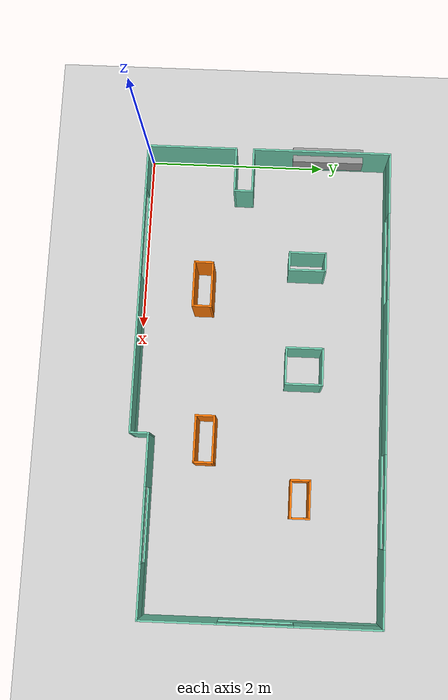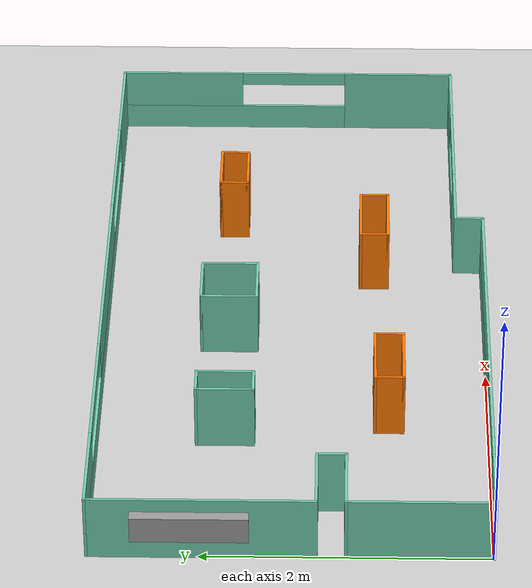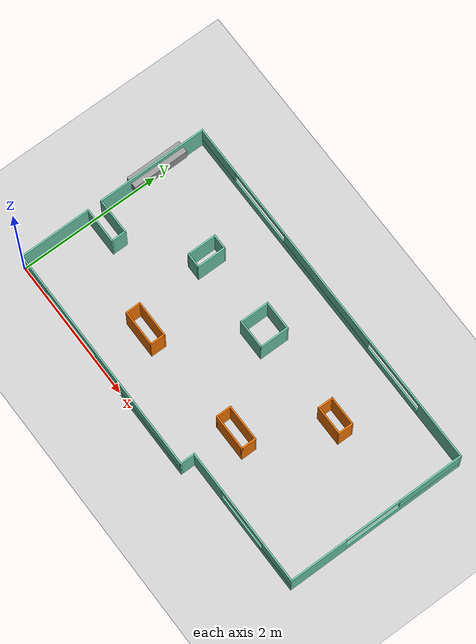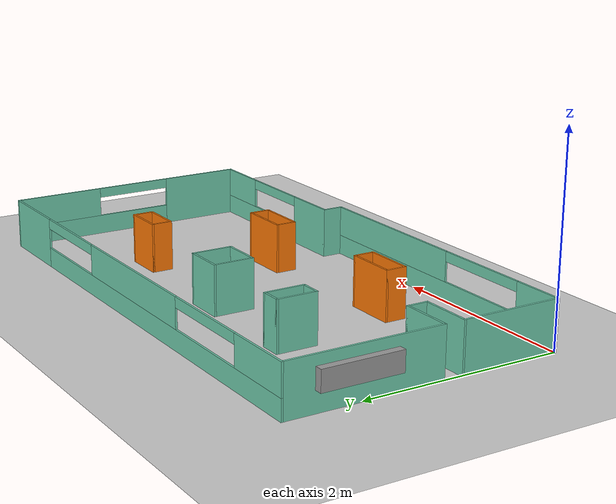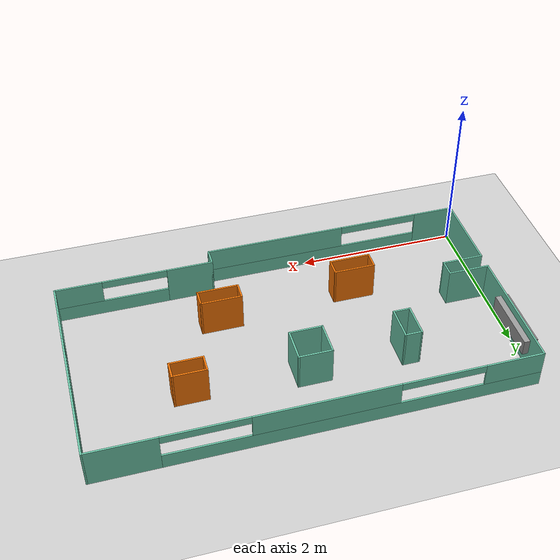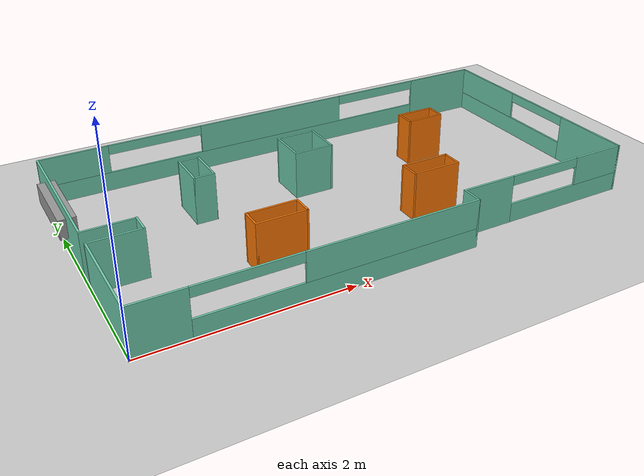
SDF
<sdf version="1.7">
 <world name="default">
  <light name="sun" type="directional">
   <pose>0 0 10 0 -0 0</pose>
   <diffuse>0.8 0.8 0.8 1</diffuse>
   <specular>0.2 0.2 0.2 1</specular>
   <attenuation>
    <range>1000</range>
    <constant>0.9</constant>
    <linear>0.01</linear>
    <quadratic>0.001</quadratic>
   </attenuation>
   <direction>-0.5 0.1 -0.9</direction>
   <spot><inner_angle>0</inner_angle><outer_angle>0</outer_angle><falloff>0</falloff></spot>
  </light>
  <model name="ground_plane">
   <static>1</static>
   <link name="link">
    <collision name="collision">
     <geometry><plane><normal>0 0 1</normal><size>100 100</size></plane></geometry>
     <surface>
      <contact><collide_bitmask>65535</collide_bitmask></contact>
      <friction><ode><mu>100</mu><mu2>50</mu2></ode></friction>
     </surface>
    </collision>
    <visual name="visual">
     <cast_shadows>0</cast_shadows>
     <geometry><plane><normal>0 0 1</normal><size>100 100</size></plane></geometry>
     <material>
      <script><uri>file://media/materials/scripts/gazebo.material</uri><name>Gazebo/Grey</name></script>
     </material>
    </visual>
   </link>
  </model>
  <gravity>0 0 -9.8</gravity>
  <magnetic_field>6e-06 2.3e-05 -4.2e-05</magnetic_field>
  <atmosphere type="adiabatic"/>
  <physics type="ode">
   <max_step_size>0.001</max_step_size>
   <real_time_factor>1</real_time_factor>
   <real_time_update_rate>1000</real_time_update_rate>
  </physics>
  <scene><ambient>0.4 0.4 0.4 1</ambient><background>0.7 0.7 0.7 1</background><shadows>1</shadows></scene>
  <spherical_coordinates>
   <surface_model>EARTH_WGS84</surface_model>
   <latitude_deg>0</latitude_deg>
   <longitude_deg>0</longitude_deg>
   <elevation>0</elevation>
   <heading_deg>0</heading_deg>
  </spherical_coordinates>
  <model name="map_Windows">
   <pose>2.605 1.375 0 0 -0 0</pose>
   <link name="Wall_0">
    <pose>-0.97 -1.375 0 0 -0 0</pose>
    <visual name="Wall_0_Visual_0">
     <pose>-1.38383 0 0.25 0 -0 0</pose>
     <geometry><box><size>0.522343 0.02 0.5</size></box></geometry>
     <material>
      <script><uri>file://media/materials/scripts/gazebo.material</uri><name>Gazebo/Grey</name></script>
      <ambient>0.435294 0.796078 0.67451 1</ambient>
     </material>
     <meta><layer>0</layer></meta>
    </visual>
    <collision name="Wall_0_Collision_0">
     <geometry><box><size>0.522343 0.02 0.5</size></box></geometry>
     <pose>-1.38383 0 0.25 0 -0 0</pose>
    </collision>
    <visual name="Wall_0_Visual_1">
     <pose>0.261172 0 0.1 0 -0 0</pose>
     <geometry><box><size>2.76766 0.02 0.2</size></box></geometry>
     <material>
      <script><uri>file://media/materials/scripts/gazebo.material</uri><name>Gazebo/Grey</name></script>
      <ambient>0.435294 0.796078 0.67451 1</ambient>
     </material>
     <meta><layer>0</layer></meta>
    </visual>
    <collision name="Wall_0_Collision_1">
     <geometry><box><size>2.76766 0.02 0.2</size></box></geometry>
     <pose>0.261172 0 0.1 0 -0 0</pose>
    </collision>
    <visual name="Wall_0_Visual_2">
     <pose>0.761172 0 0.35 0 -0 0</pose>
     <geometry><box><size>1.76766 0.02 0.3</size></box></geometry>
     <material>
      <script><uri>file://media/materials/scripts/gazebo.material</uri><name>Gazebo/Grey</name></script>
      <ambient>0.435294 0.796078 0.67451 1</ambient>
     </material>
     <meta><layer>0</layer></meta>
    </visual>
    <collision name="Wall_0_Collision_2">
     <geometry><box><size>1.76766 0.02 0.3</size></box></geometry>
     <pose>0.761172 0 0.35 0 -0 0</pose>
    </collision>
    <visual name="Wall_0_Visual_3">
     <pose>-0.622657 0 0.45 0 -0 0</pose>
     <geometry><box><size>1 0.02 0.1</size></box></geometry>
     <material>
      <script><uri>file://media/materials/scripts/gazebo.material</uri><name>Gazebo/Grey</name></script>
      <ambient>0.435294 0.796078 0.67451 1</ambient>
     </material>
     <meta><layer>0</layer></meta>
    </visual>
    <collision name="Wall_0_Collision_3">
     <geometry><box><size>1 0.02 0.1</size></box></geometry>
     <pose>-0.622657 0 0.45 0 -0 0</pose>
    </collision>
   </link>
   <link name="Wall_10">
    <collision name="Wall_10_Collision">
     <geometry><box><size>1.02 0.02 0.5</size></box></geometry>
     <pose>0 0 0.25 0 -0 0</pose>
    </collision>
    <visual name="Wall_10_Visual">
     <pose>0 0 0.25 0 -0 0</pose>
     <geometry><box><size>1.02 0.02 0.5</size></box></geometry>
     <material>
      <script><uri>file://media/materials/scripts/gazebo.material</uri><name>Gazebo/Grey</name></script>
      <ambient>0.435294 0.796078 0.67451 1</ambient>
     </material>
     <meta><layer>0</layer></meta>
    </visual>
    <pose>-2.605 -0.875 0 0 -0 -1.5708</pose>
   </link>
   <link name="Wall_12">
    <collision name="Wall_12_Collision">
     <geometry><box><size>0.22 0.02 0.5</size></box></geometry>
     <pose>0 0 0.25 0 -0 0</pose>
    </collision>
    <visual name="Wall_12_Visual">
     <pose>0 0 0.25 0 -0 0</pose>
     <geometry><box><size>0.22 0.02 0.5</size></box></geometry>
     <material>
      <script><uri>file://media/materials/scripts/gazebo.material</uri><name>Gazebo/Grey</name></script>
      <ambient>0.435294 0.796078 0.67451 1</ambient>
     </material>
     <meta><layer>0</layer></meta>
    </visual>
    <pose>-1.305 0.275 0 0 -0 0</pose>
   </link>
   <link name="Wall_13">
    <collision name="Wall_13_Collision">
     <geometry><box><size>0.42 0.02 0.5</size></box></geometry>
     <pose>0 0 0.25 0 -0 0</pose>
    </collision>
    <visual name="Wall_13_Visual">
     <pose>0 0 0.25 0 -0 0</pose>
     <geometry><box><size>0.42 0.02 0.5</size></box></geometry>
     <material>
      <script><uri>file://media/materials/scripts/gazebo.material</uri><name>Gazebo/Grey</name></script>
      <ambient>0.435294 0.796078 0.67451 1</ambient>
     </material>
     <meta><layer>0</layer></meta>
    </visual>
    <pose>-1.205 0.475 0 0 -0 1.5708</pose>
   </link>
   <link name="Wall_14">
    <collision name="Wall_14_Collision">
     <geometry><box><size>0.22 0.02 0.5</size></box></geometry>
     <pose>0 0 0.25 0 -0 0</pose>
    </collision>
    <visual name="Wall_14_Visual">
     <pose>0 0 0.25 0 -0 0</pose>
     <geometry><box><size>0.22 0.02 0.5</size></box></geometry>
     <material>
      <script><uri>file://media/materials/scripts/gazebo.material</uri><name>Gazebo/Grey</name></script>
      <ambient>0.435294 0.796078 0.67451 1</ambient>
     </material>
     <meta><layer>0</layer></meta>
    </visual>
    <pose>-1.305 0.675 0 0 -0 3.14159</pose>
   </link>
   <link name="Wall_15">
    <collision name="Wall_15_Collision">
     <geometry><box><size>0.42 0.02 0.5</size></box></geometry>
     <pose>0 0 0.25 0 -0 0</pose>
    </collision>
    <visual name="Wall_15_Visual">
     <pose>0 0 0.25 0 -0 0</pose>
     <geometry><box><size>0.42 0.02 0.5</size></box></geometry>
     <material>
      <script><uri>file://media/materials/scripts/gazebo.material</uri><name>Gazebo/Grey</name></script>
      <ambient>0.435294 0.796078 0.67451 1</ambient>
     </material>
     <meta><layer>0</layer></meta>
    </visual>
    <pose>-1.405 0.475 0 0 -0 -1.5708</pose>
   </link>
   <link name="Wall_17">
    <collision name="Wall_17_Collision">
     <geometry><box><size>0.42 0.02 0.5</size></box></geometry>
     <pose>0 0 0.25 0 -0 0</pose>
    </collision>
    <visual name="Wall_17_Visual">
     <pose>0 0 0.25 0 -0 0</pose>
     <geometry><box><size>0.42 0.02 0.5</size></box></geometry>
     <material>
      <script><uri>file://media/materials/scripts/gazebo.material</uri><name>Gazebo/Grey</name></script>
      <ambient>0.435294 0.796078 0.67451 1</ambient>
     </material>
     <meta><layer>0</layer></meta>
    </visual>
    <pose>-0.325 0.475 0 0 -0 -1.5708</pose>
   </link>
   <link name="Wall_18">
    <collision name="Wall_18_Collision">
     <geometry><box><size>0.42 0.02 0.5</size></box></geometry>
     <pose>0 0 0.25 0 -0 0</pose>
    </collision>
    <visual name="Wall_18_Visual">
     <pose>0 0 0.25 0 -0 0</pose>
     <geometry><box><size>0.42 0.02 0.5</size></box></geometry>
     <material>
      <script><uri>file://media/materials/scripts/gazebo.material</uri><name>Gazebo/Grey</name></script>
      <ambient>0.435294 0.796078 0.67451 1</ambient>
     </material>
     <meta><layer>0</layer></meta>
    </visual>
    <pose>-0.125 0.275 0 0 -0 0</pose>
   </link>
   <link name="Wall_19">
    <collision name="Wall_19_Collision">
     <geometry><box><size>0.42 0.02 0.5</size></box></geometry>
     <pose>0 0 0.25 0 -0 0</pose>
    </collision>
    <visual name="Wall_19_Visual">
     <pose>0 0 0.25 0 -0 0</pose>
     <geometry><box><size>0.42 0.02 0.5</size></box></geometry>
     <material>
      <script><uri>file://media/materials/scripts/gazebo.material</uri><name>Gazebo/Grey</name></script>
      <ambient>0.435294 0.796078 0.67451 1</ambient>
     </material>
     <meta><layer>0</layer></meta>
    </visual>
    <pose>0.075 0.475 0 0 -0 1.5708</pose>
   </link>
   <link name="Wall_2">
    <collision name="Wall_2_Collision">
     <geometry><box><size>0.22 0.02 0.5</size></box></geometry>
     <pose>0 0 0.25 0 -0 0</pose>
    </collision>
    <visual name="Wall_2_Visual">
     <pose>0 0 0.25 0 -0 0</pose>
     <geometry><box><size>0.22 0.02 0.5</size></box></geometry>
     <material>
      <script><uri>file://media/materials/scripts/gazebo.material</uri><name>Gazebo/Grey</name></script>
      <ambient>0.435294 0.796078 0.67451 1</ambient>
     </material>
     <meta><layer>0</layer></meta>
    </visual>
    <pose>0.665 -1.275 0 0 -0 1.5708</pose>
   </link>
   <link name="Wall_20">
    <collision name="Wall_20_Collision">
     <geometry><box><size>0.42 0.02 0.5</size></box></geometry>
     <pose>0 0 0.25 0 -0 0</pose>
    </collision>
    <visual name="Wall_20_Visual">
     <pose>0 0 0.25 0 -0 0</pose>
     <geometry><box><size>0.42 0.02 0.5</size></box></geometry>
     <material>
      <script><uri>file://media/materials/scripts/gazebo.material</uri><name>Gazebo/Grey</name></script>
      <ambient>0.435294 0.796078 0.67451 1</ambient>
     </material>
     <meta><layer>0</layer></meta>
    </visual>
    <pose>-0.125 0.675 0 0 -0 3.14159</pose>
   </link>
   <link name="Wall_23">
    <collision name="Wall_23_Collision">
     <geometry><box><size>0.22 0.02 0.5</size></box></geometry>
     <pose>0 0 0.25 0 -0 0</pose>
    </collision>
    <visual name="Wall_23_Visual">
     <pose>0 0 0.25 0 -0 0</pose>
     <geometry><box><size>0.22 0.02 0.5</size></box></geometry>
     <material>
      <script><uri>file://media/materials/scripts/gazebo.material</uri><name>Gazebo/Grey</name></script>
      <ambient>0.996078 0.47451 0.0196078 1</ambient>
     </material>
     <meta><layer>0</layer></meta>
    </visual>
    <pose>1.105 0.475 0 0 -0 -1.5708</pose>
   </link>
   <link name="Wall_24">
    <collision name="Wall_24_Collision">
     <geometry><box><size>0.42 0.02 0.5</size></box></geometry>
     <pose>0 0 0.25 0 -0 0</pose>
    </collision>
    <visual name="Wall_24_Visual">
     <pose>0 0 0.25 0 -0 0</pose>
     <geometry><box><size>0.42 0.02 0.5</size></box></geometry>
     <material>
      <script><uri>file://media/materials/scripts/gazebo.material</uri><name>Gazebo/Grey</name></script>
      <ambient>0.996078 0.47451 0.0196078 1</ambient>
     </material>
     <meta><layer>0</layer></meta>
    </visual>
    <pose>1.305 0.375 0 0 -0 0</pose>
   </link>
   <link name="Wall_25">
    <collision name="Wall_25_Collision">
     <geometry><box><size>0.22 0.02 0.5</size></box></geometry>
     <pose>0 0 0.25 0 -0 0</pose>
    </collision>
    <visual name="Wall_25_Visual">
     <pose>0 0 0.25 0 -0 0</pose>
     <geometry><box><size>0.22 0.02 0.5</size></box></geometry>
     <material>
      <script><uri>file://media/materials/scripts/gazebo.material</uri><name>Gazebo/Grey</name></script>
      <ambient>0.996078 0.47451 0.0196078 1</ambient>
     </material>
     <meta><layer>0</layer></meta>
    </visual>
    <pose>1.505 0.475 0 0 -0 1.5708</pose>
   </link>
   <link name="Wall_26">
    <collision name="Wall_26_Collision">
     <geometry><box><size>0.42 0.02 0.5</size></box></geometry>
     <pose>0 0 0.25 0 -0 0</pose>
    </collision>
    <visual name="Wall_26_Visual">
     <pose>0 0 0.25 0 -0 0</pose>
     <geometry><box><size>0.42 0.02 0.5</size></box></geometry>
     <material>
      <script><uri>file://media/materials/scripts/gazebo.material</uri><name>Gazebo/Grey</name></script>
      <ambient>0.996078 0.47451 0.0196078 1</ambient>
     </material>
     <meta><layer>0</layer></meta>
    </visual>
    <pose>1.305 0.575 0 0 -0 3.14159</pose>
   </link>
   <link name="Wall_28">
    <collision name="Wall_28_Collision">
     <geometry><box><size>0.22 0.02 0.5</size></box></geometry>
     <pose>0 0 0.25 0 -0 0</pose>
    </collision>
    <visual name="Wall_28_Visual">
     <pose>0 0 0.25 0 -0 0</pose>
     <geometry><box><size>0.22 0.02 0.5</size></box></geometry>
     <material>
      <script><uri>file://media/materials/scripts/gazebo.material</uri><name>Gazebo/Grey</name></script>
      <ambient>0.996078 0.47451 0.0196078 1</ambient>
     </material>
     <meta><layer>0</layer></meta>
    </visual>
    <pose>0.455 -0.575 0 0 -0 -1.5708</pose>
   </link>
   <link name="Wall_29">
    <collision name="Wall_29_Collision">
     <geometry><box><size>0.52 0.02 0.5</size></box></geometry>
     <pose>0 0 0.25 0 -0 0</pose>
    </collision>
    <visual name="Wall_29_Visual">
     <pose>0 0 0.25 0 -0 0</pose>
     <geometry><box><size>0.52 0.02 0.5</size></box></geometry>
     <material>
      <script><uri>file://media/materials/scripts/gazebo.material</uri><name>Gazebo/Grey</name></script>
      <ambient>0.996078 0.47451 0.0196078 1</ambient>
     </material>
     <meta><layer>0</layer></meta>
    </visual>
    <pose>0.705 -0.675 0 0 -0 0</pose>
   </link>
   <link name="Wall_3">
    <pose>1.635 -1.175 0 0 -0 0</pose>
    <visual name="Wall_3_Visual_0">
     <pose>-0.690371 0 0.25 0 -0 0</pose>
     <geometry><box><size>0.579258 0.02 0.5</size></box></geometry>
     <material>
      <script><uri>file://media/materials/scripts/gazebo.material</uri><name>Gazebo/Grey</name></script>
      <ambient>0.435294 0.796078 0.67451 1</ambient>
     </material>
     <meta><layer>0</layer></meta>
    </visual>
    <collision name="Wall_3_Collision_0">
     <geometry><box><size>0.579258 0.02 0.5</size></box></geometry>
     <pose>-0.690371 0 0.25 0 -0 0</pose>
    </collision>
    <visual name="Wall_3_Visual_1">
     <pose>0.289629 0 0.1 0 -0 0</pose>
     <geometry><box><size>1.38074 0.02 0.2</size></box></geometry>
     <material>
      <script><uri>file://media/materials/scripts/gazebo.material</uri><name>Gazebo/Grey</name></script>
      <ambient>0.435294 0.796078 0.67451 1</ambient>
     </material>
     <meta><layer>0</layer></meta>
    </visual>
    <collision name="Wall_3_Collision_1">
     <geometry><box><size>1.38074 0.02 0.2</size></box></geometry>
     <pose>0.289629 0 0.1 0 -0 0</pose>
    </collision>
    <visual name="Wall_3_Visual_2">
     <pose>0.689629 0 0.35 0 -0 0</pose>
     <geometry><box><size>0.580742 0.02 0.3</size></box></geometry>
     <material>
      <script><uri>file://media/materials/scripts/gazebo.material</uri><name>Gazebo/Grey</name></script>
      <ambient>0.435294 0.796078 0.67451 1</ambient>
     </material>
     <meta><layer>0</layer></meta>
    </visual>
    <collision name="Wall_3_Collision_2">
     <geometry><box><size>0.580742 0.02 0.3</size></box></geometry>
     <pose>0.689629 0 0.35 0 -0 0</pose>
    </collision>
    <visual name="Wall_3_Visual_3">
     <pose>-0.000742 0 0.45 0 -0 0</pose>
     <geometry><box><size>0.8 0.02 0.1</size></box></geometry>
     <material>
      <script><uri>file://media/materials/scripts/gazebo.material</uri><name>Gazebo/Grey</name></script>
      <ambient>0.435294 0.796078 0.67451 1</ambient>
     </material>
     <meta><layer>0</layer></meta>
    </visual>
    <collision name="Wall_3_Collision_3">
     <geometry><box><size>0.8 0.02 0.1</size></box></geometry>
     <pose>-0.000742 0 0.45 0 -0 0</pose>
    </collision>
   </link>
   <link name="Wall_30">
    <collision name="Wall_30_Collision">
     <geometry><box><size>0.22 0.02 0.5</size></box></geometry>
     <pose>0 0 0.25 0 -0 0</pose>
    </collision>
    <visual name="Wall_30_Visual">
     <pose>0 0 0.25 0 -0 0</pose>
     <geometry><box><size>0.22 0.02 0.5</size></box></geometry>
     <material>
      <script><uri>file://media/materials/scripts/gazebo.material</uri><name>Gazebo/Grey</name></script>
      <ambient>0.996078 0.47451 0.0196078 1</ambient>
     </material>
     <meta><layer>0</layer></meta>
    </visual>
    <pose>0.955 -0.575 0 0 -0 1.5708</pose>
   </link>
   <link name="Wall_31">
    <collision name="Wall_31_Collision">
     <geometry><box><size>0.52 0.02 0.5</size></box></geometry>
     <pose>0 0 0.25 0 -0 0</pose>
    </collision>
    <visual name="Wall_31_Visual">
     <pose>0 0 0.25 0 -0 0</pose>
     <geometry><box><size>0.52 0.02 0.5</size></box></geometry>
     <material>
      <script><uri>file://media/materials/scripts/gazebo.material</uri><name>Gazebo/Grey</name></script>
      <ambient>0.996078 0.47451 0.0196078 1</ambient>
     </material>
     <meta><layer>0</layer></meta>
    </visual>
    <pose>0.705 -0.475 0 0 -0 3.14159</pose>
   </link>
   <link name="Wall_33">
    <collision name="Wall_33_Collision">
     <geometry><box><size>0.22 0.02 0.5</size></box></geometry>
     <pose>0 0 0.25 0 -0 0</pose>
    </collision>
    <visual name="Wall_33_Visual">
     <pose>0 0 0.25 0 -0 0</pose>
     <geometry><box><size>0.22 0.02 0.5</size></box></geometry>
     <material>
      <script><uri>file://media/materials/scripts/gazebo.material</uri><name>Gazebo/Grey</name></script>
      <ambient>0.996078 0.47451 0.0196078 1</ambient>
     </material>
     <meta><layer>0</layer></meta>
    </visual>
    <pose>-1.255 -0.675 0 0 -0 -1.5708</pose>
   </link>
   <link name="Wall_34">
    <collision name="Wall_34_Collision">
     <geometry><box><size>0.52 0.02 0.5</size></box></geometry>
     <pose>0 0 0.25 0 -0 0</pose>
    </collision>
    <visual name="Wall_34_Visual">
     <pose>0 0 0.25 0 -0 0</pose>
     <geometry><box><size>0.52 0.02 0.5</size></box></geometry>
     <material>
      <script><uri>file://media/materials/scripts/gazebo.material</uri><name>Gazebo/Grey</name></script>
      <ambient>0.996078 0.47451 0.0196078 1</ambient>
     </material>
     <meta><layer>0</layer></meta>
    </visual>
    <pose>-1.005 -0.775 0 0 -0 0</pose>
   </link>
   <link name="Wall_35">
    <collision name="Wall_35_Collision">
     <geometry><box><size>0.22 0.02 0.5</size></box></geometry>
     <pose>0 0 0.25 0 -0 0</pose>
    </collision>
    <visual name="Wall_35_Visual">
     <pose>0 0 0.25 0 -0 0</pose>
     <geometry><box><size>0.22 0.02 0.5</size></box></geometry>
     <material>
      <script><uri>file://media/materials/scripts/gazebo.material</uri><name>Gazebo/Grey</name></script>
      <ambient>0.996078 0.47451 0.0196078 1</ambient>
     </material>
     <meta><layer>0</layer></meta>
    </visual>
    <pose>-0.755 -0.675 0 0 -0 1.5708</pose>
   </link>
   <link name="Wall_36">
    <collision name="Wall_36_Collision">
     <geometry><box><size>0.52 0.02 0.5</size></box></geometry>
     <pose>0 0 0.25 0 -0 0</pose>
    </collision>
    <visual name="Wall_36_Visual">
     <pose>0 0 0.25 0 -0 0</pose>
     <geometry><box><size>0.52 0.02 0.5</size></box></geometry>
     <material>
      <script><uri>file://media/materials/scripts/gazebo.material</uri><name>Gazebo/Grey</name></script>
      <ambient>0.996078 0.47451 0.0196078 1</ambient>
     </material>
     <meta><layer>0</layer></meta>
    </visual>
    <pose>-1.005 -0.575 0 0 -0 3.14159</pose>
   </link>
   <link name="Wall_4">
    <pose>2.605 0.1 0 0 -0 1.5708</pose>
    <visual name="Wall_4_Visual_0">
     <pose>-0.8675 0 0.25 0 -0 0</pose>
     <geometry><box><size>0.835 0.02 0.5</size></box></geometry>
     <material>
      <script><uri>file://media/materials/scripts/gazebo.material</uri><name>Gazebo/Grey</name></script>
      <ambient>0.435294 0.796078 0.67451 1</ambient>
     </material>
     <meta><layer>0</layer></meta>
    </visual>
    <collision name="Wall_4_Collision_0">
     <geometry><box><size>0.835 0.02 0.5</size></box></geometry>
     <pose>-0.8675 0 0.25 0 -0 0</pose>
    </collision>
    <visual name="Wall_4_Visual_1">
     <pose>0.4175 0 0.1 0 -0 0</pose>
     <geometry><box><size>1.735 0.02 0.2</size></box></geometry>
     <material>
      <script><uri>file://media/materials/scripts/gazebo.material</uri><name>Gazebo/Grey</name></script>
      <ambient>0.435294 0.796078 0.67451 1</ambient>
     </material>
     <meta><layer>0</layer></meta>
    </visual>
    <collision name="Wall_4_Collision_1">
     <geometry><box><size>1.735 0.02 0.2</size></box></geometry>
     <pose>0.4175 0 0.1 0 -0 0</pose>
    </collision>
    <visual name="Wall_4_Visual_2">
     <pose>0.8175 0 0.35 0 -0 0</pose>
     <geometry><box><size>0.935 0.02 0.3</size></box></geometry>
     <material>
      <script><uri>file://media/materials/scripts/gazebo.material</uri><name>Gazebo/Grey</name></script>
      <ambient>0.435294 0.796078 0.67451 1</ambient>
     </material>
     <meta><layer>0</layer></meta>
    </visual>
    <collision name="Wall_4_Collision_2">
     <geometry><box><size>0.935 0.02 0.3</size></box></geometry>
     <pose>0.8175 0 0.35 0 -0 0</pose>
    </collision>
    <visual name="Wall_4_Visual_3">
     <pose>-0.05 0 0.45 0 -0 0</pose>
     <geometry><box><size>0.8 0.02 0.1</size></box></geometry>
     <material>
      <script><uri>file://media/materials/scripts/gazebo.material</uri><name>Gazebo/Grey</name></script>
      <ambient>0.435294 0.796078 0.67451 1</ambient>
     </material>
     <meta><layer>0</layer></meta>
    </visual>
    <collision name="Wall_4_Collision_3">
     <geometry><box><size>0.8 0.02 0.1</size></box></geometry>
     <pose>-0.05 0 0.45 0 -0 0</pose>
    </collision>
   </link>
   <link name="Wall_5">
    <pose>-0 1.375 0 0 -0 3.14159</pose>
    <visual name="Wall_5_Visual_0">
     <pose>-2.205 0 0.25 0 -0 0</pose>
     <geometry><box><size>0.82 0.02 0.5</size></box></geometry>
     <material>
      <script><uri>file://media/materials/scripts/gazebo.material</uri><name>Gazebo/Grey</name></script>
      <ambient>0.435294 0.796078 0.67451 1</ambient>
     </material>
     <meta><layer>0</layer></meta>
    </visual>
    <collision name="Wall_5_Collision_0">
     <geometry><box><size>0.82 0.02 0.5</size></box></geometry>
     <pose>-2.205 0 0.25 0 -0 0</pose>
    </collision>
    <visual name="Wall_5_Visual_1">
     <pose>0.41 0 0.1 0 -0 0</pose>
     <geometry><box><size>4.41 0.02 0.2</size></box></geometry>
     <material>
      <script><uri>file://media/materials/scripts/gazebo.material</uri><name>Gazebo/Grey</name></script>
      <ambient>0.435294 0.796078 0.67451 1</ambient>
     </material>
     <meta><layer>0</layer></meta>
    </visual>
    <collision name="Wall_5_Collision_1">
     <geometry><box><size>4.41 0.02 0.2</size></box></geometry>
     <pose>0.41 0 0.1 0 -0 0</pose>
    </collision>
    <visual name="Wall_5_Visual_2">
     <pose>0.055 0 0.35 0 -0 0</pose>
     <geometry><box><size>1.7 0.02 0.3</size></box></geometry>
     <material>
      <script><uri>file://media/materials/scripts/gazebo.material</uri><name>Gazebo/Grey</name></script>
      <ambient>0.435294 0.796078 0.67451 1</ambient>
     </material>
     <meta><layer>0</layer></meta>
    </visual>
    <collision name="Wall_5_Collision_2">
     <geometry><box><size>1.7 0.02 0.3</size></box></geometry>
     <pose>0.055 0 0.35 0 -0 0</pose>
    </collision>
    <visual name="Wall_5_Visual_3">
     <pose>2.26 0 0.35 0 -0 0</pose>
     <geometry><box><size>0.71 0.02 0.3</size></box></geometry>
     <material>
      <script><uri>file://media/materials/scripts/gazebo.material</uri><name>Gazebo/Grey</name></script>
      <ambient>0.435294 0.796078 0.67451 1</ambient>
     </material>
     <meta><layer>0</layer></meta>
    </visual>
    <collision name="Wall_5_Collision_3">
     <geometry><box><size>0.71 0.02 0.3</size></box></geometry>
     <pose>2.26 0 0.35 0 -0 0</pose>
    </collision>
    <visual name="Wall_5_Visual_4">
     <pose>-1.295 0 0.45 0 -0 0</pose>
     <geometry><box><size>1 0.02 0.1</size></box></geometry>
     <material>
      <script><uri>file://media/materials/scripts/gazebo.material</uri><name>Gazebo/Grey</name></script>
      <ambient>0.435294 0.796078 0.67451 1</ambient>
     </material>
     <meta><layer>0</layer></meta>
    </visual>
    <collision name="Wall_5_Collision_4">
     <geometry><box><size>1 0.02 0.1</size></box></geometry>
     <pose>-1.295 0 0.45 0 -0 0</pose>
    </collision>
    <visual name="Wall_5_Visual_5">
     <pose>1.405 0 0.45 0 -0 0</pose>
     <geometry><box><size>1 0.02 0.1</size></box></geometry>
     <material>
      <script><uri>file://media/materials/scripts/gazebo.material</uri><name>Gazebo/Grey</name></script>
      <ambient>0.435294 0.796078 0.67451 1</ambient>
     </material>
     <meta><layer>0</layer></meta>
    </visual>
    <collision name="Wall_5_Collision_5">
     <geometry><box><size>1 0.02 0.1</size></box></geometry>
     <pose>1.405 0 0.45 0 -0 0</pose>
    </collision>
   </link>
   <link name="Wall_6">
    <collision name="Wall_6_Collision">
     <geometry><box><size>1.57 0.02 0.5</size></box></geometry>
     <pose>0 0 0.25 0 -0 0</pose>
    </collision>
    <visual name="Wall_6_Visual">
     <pose>0 0 0.25 0 -0 0</pose>
     <geometry><box><size>1.57 0.02 0.5</size></box></geometry>
     <material>
      <script><uri>file://media/materials/scripts/gazebo.material</uri><name>Gazebo/Grey</name></script>
      <ambient>0.435294 0.796078 0.67451 1</ambient>
     </material>
     <meta><layer>0</layer></meta>
    </visual>
    <pose>-2.605 0.6 0 0 -0 -1.5708</pose>
   </link>
   <link name="Wall_7">
    <collision name="Wall_7_Collision">
     <geometry><box><size>0.52 0.02 0.5</size></box></geometry>
     <pose>0 0 0.25 0 -0 0</pose>
    </collision>
    <visual name="Wall_7_Visual">
     <pose>0 0 0.25 0 -0 0</pose>
     <geometry><box><size>0.52 0.02 0.5</size></box></geometry>
     <material>
      <script><uri>file://media/materials/scripts/gazebo.material</uri><name>Gazebo/Grey</name></script>
      <ambient>0.435294 0.796078 0.67451 1</ambient>
     </material>
     <meta><layer>0</layer></meta>
    </visual>
    <pose>-2.355 -0.175 0 0 -0 0</pose>
   </link>
   <link name="Wall_8">
    <collision name="Wall_8_Collision">
     <geometry><box><size>0.22 0.02 0.5</size></box></geometry>
     <pose>0 0 0.25 0 -0 0</pose>
    </collision>
    <visual name="Wall_8_Visual">
     <pose>0 0 0.25 0 -0 0</pose>
     <geometry><box><size>0.22 0.02 0.5</size></box></geometry>
     <material>
      <script><uri>file://media/materials/scripts/gazebo.material</uri><name>Gazebo/Grey</name></script>
      <ambient>0.435294 0.796078 0.67451 1</ambient>
     </material>
     <meta><layer>0</layer></meta>
    </visual>
    <pose>-2.105 -0.275 0 0 -0 -1.5708</pose>
   </link>
   <link name="Wall_9">
    <collision name="Wall_9_Collision">
     <geometry><box><size>0.52 0.02 0.5</size></box></geometry>
     <pose>0 0 0.25 0 -0 0</pose>
    </collision>
    <visual name="Wall_9_Visual">
     <pose>0 0 0.25 0 -0 0</pose>
     <geometry><box><size>0.52 0.02 0.5</size></box></geometry>
     <material>
      <script><uri>file://media/materials/scripts/gazebo.material</uri><name>Gazebo/Grey</name></script>
      <ambient>0.435294 0.796078 0.67451 1</ambient>
     </material>
     <meta><layer>0</layer></meta>
    </visual>
    <pose>-2.355 -0.375 0 0 -0 3.14159</pose>
   </link>
   <link name="Window_3">
    <collision name="Window_3_Collision">
     <geometry><box><size>0.8 0.17 0.2</size></box></geometry>
     <pose>0 0 0.1 0 -0 0</pose>
    </collision>
    <visual name="Window_3_Visual">
     <pose>0 0 0.1 0 -0 0</pose>
     <geometry><box><size>0.8 0.17 0.2</size></box></geometry>
     <material>
      <script><uri>file://media/materials/scripts/gazebo.material</uri><name>Gazebo/Grey</name></script>
     </material>
    </visual>
    <pose>-2.605 0.675 0.2 0 -0 -1.56924</pose>
   </link>
   <static>1</static>
  </model>
 </world>
</sdf>
